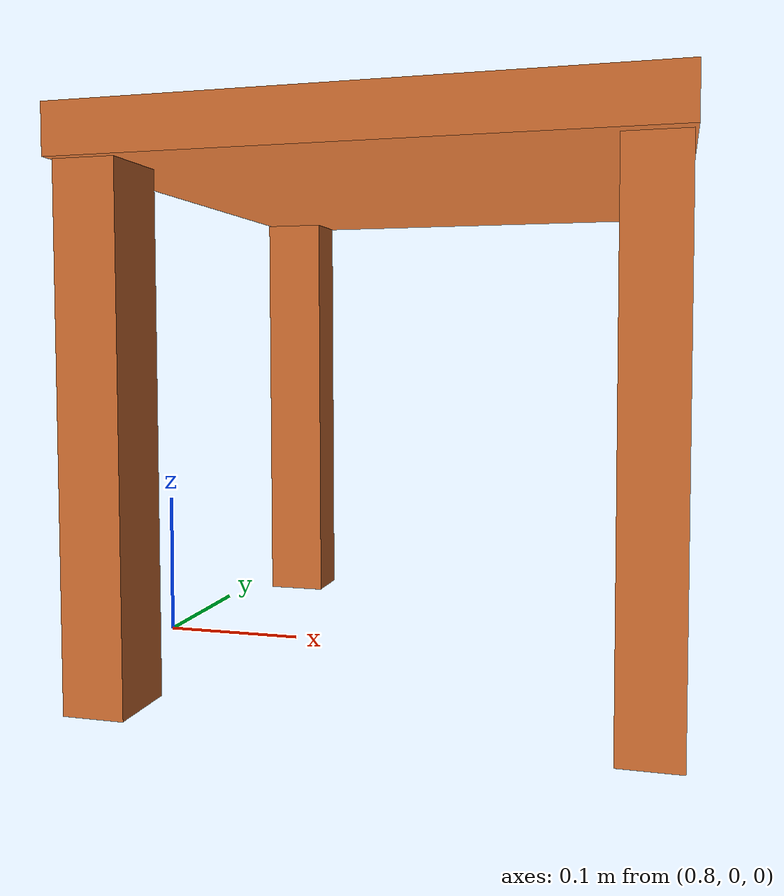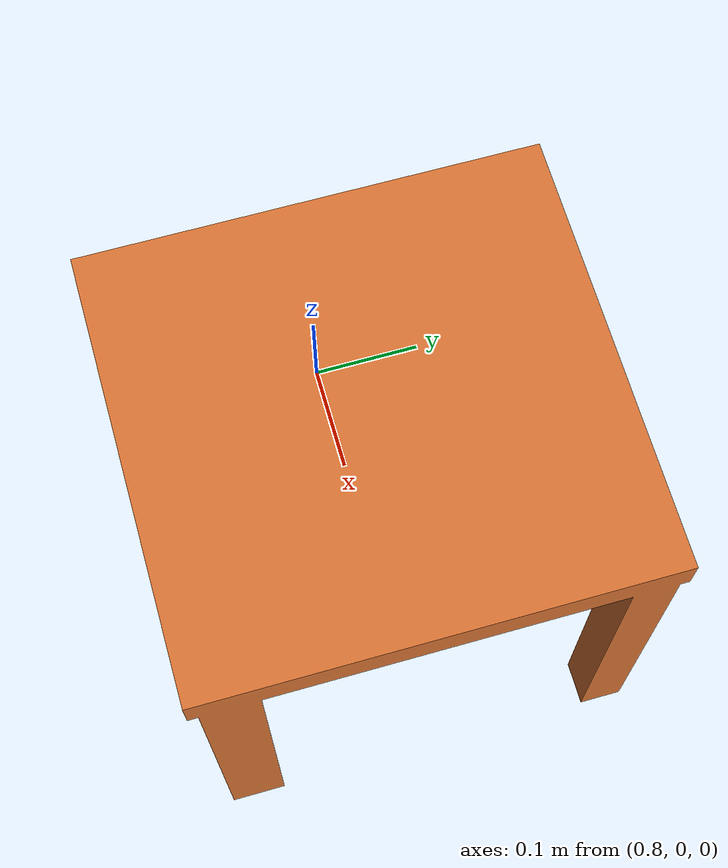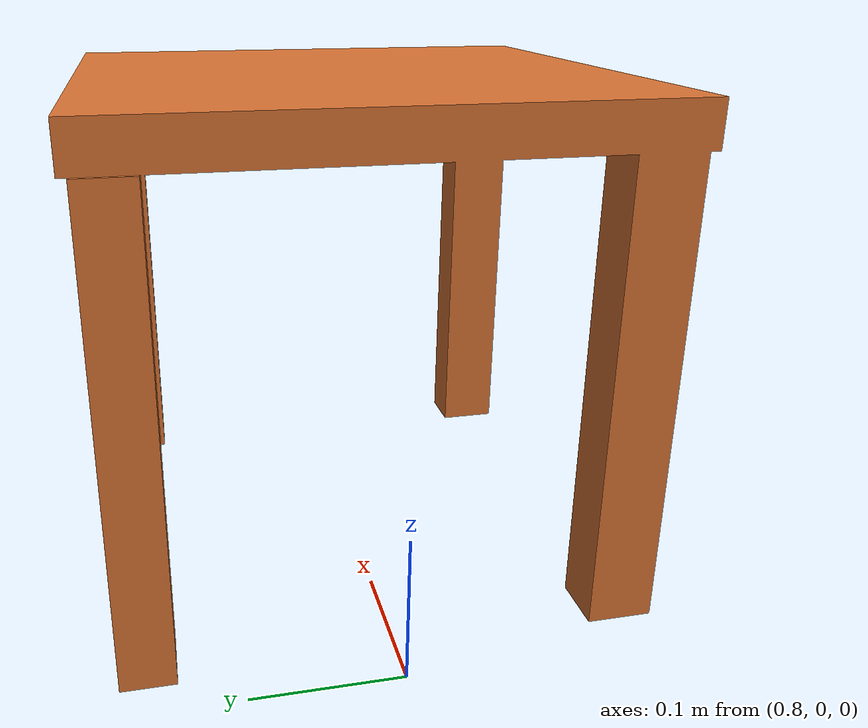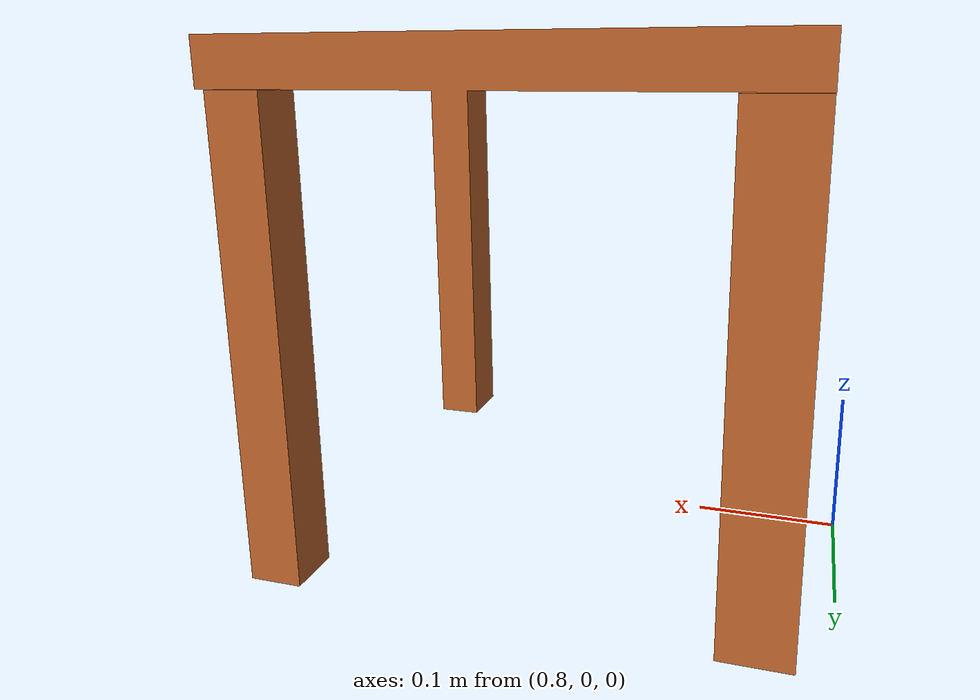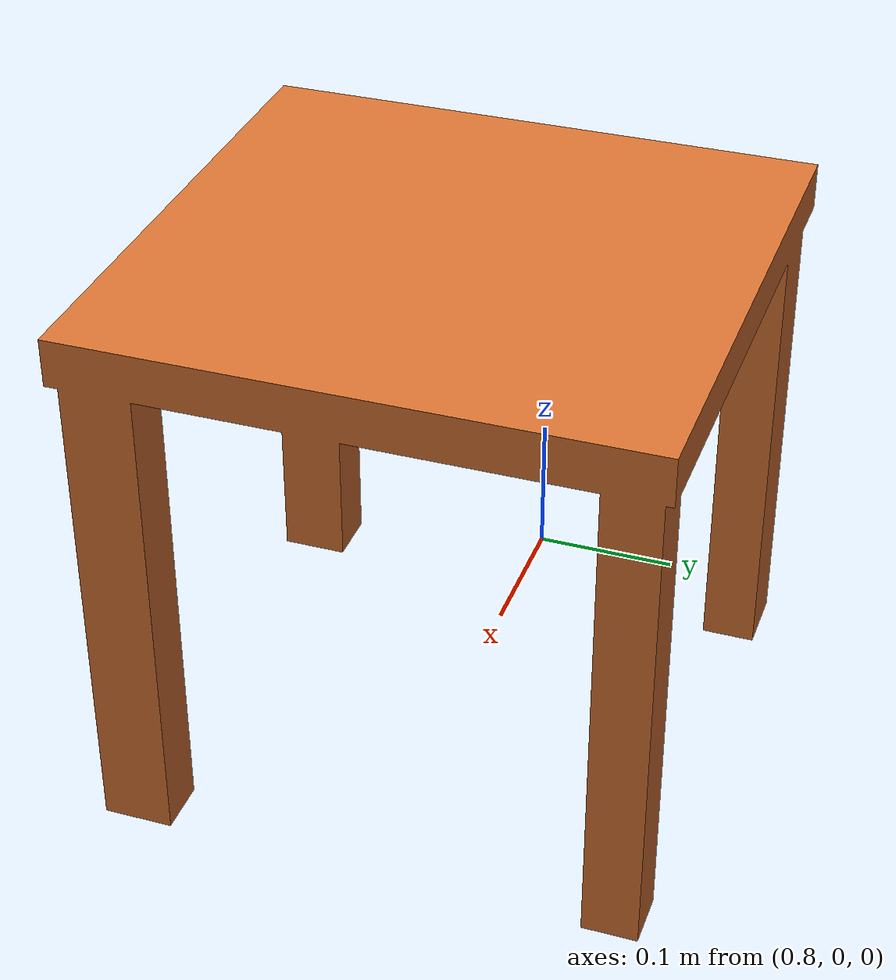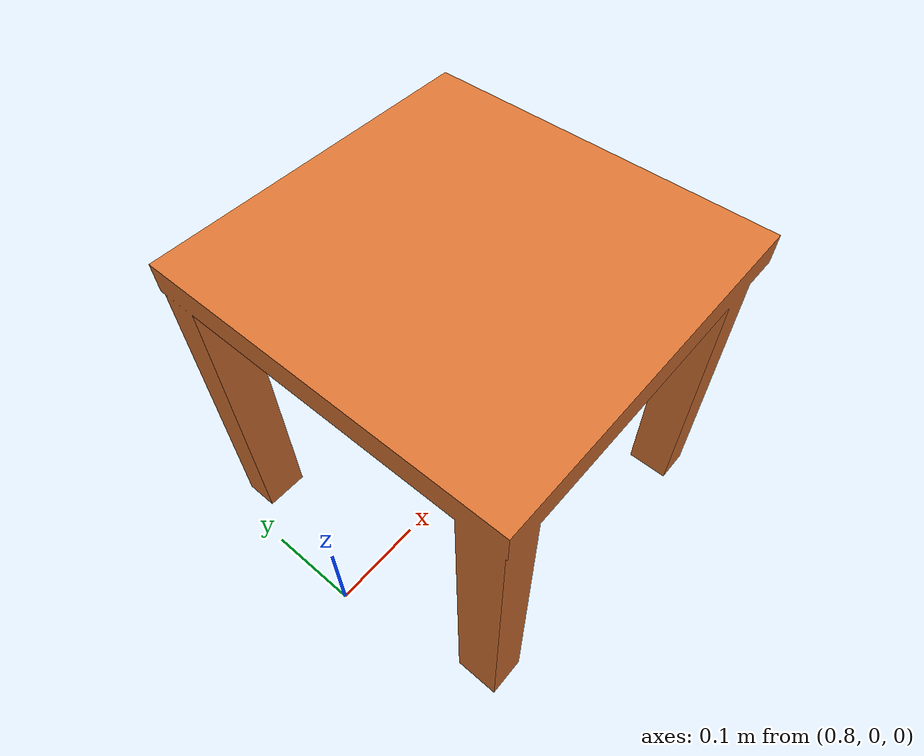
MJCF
<mujoco model="smalltable">
  <compiler meshdir="."/>

  <asset>
    <mesh name="smalltable_visual_mesh" file="visual.obj"/>
    <mesh name="smalltable_collision_mesh_00" file="collision/part_00.obj"/>
    <mesh name="smalltable_collision_mesh_01" file="collision/part_01.obj"/>
    <mesh name="smalltable_collision_mesh_02" file="collision/part_02.obj"/>
    <mesh name="smalltable_collision_mesh_03" file="collision/part_03.obj"/>
    <mesh name="smalltable_collision_mesh_04" file="collision/part_04.obj"/>
  </asset>

  <worldbody>
    <body name="hoi_object" pos="1 0 0.35113797">
      <freejoint name="hoi_object_freejoint"/>
      <geom name="hoi_object_visual" type="mesh" mesh="smalltable_visual_mesh" mass="0"
            contype="0" conaffinity="0" group="2" rgba="0.85 0.45 0.20 1"/>
      <geom name="hoi_object_collision_00" type="mesh" mesh="smalltable_collision_mesh_00"
            density="200" friction="1 0.005 0.0001" solref="0.02 1" margin="0.005" rgba="0 0 0 0"/>
      <geom name="hoi_object_collision_01" type="mesh" mesh="smalltable_collision_mesh_01"
            density="200" friction="1 0.005 0.0001" solref="0.02 1" margin="0.005" rgba="0 0 0 0"/>
      <geom name="hoi_object_collision_02" type="mesh" mesh="smalltable_collision_mesh_02"
            density="200" friction="1 0.005 0.0001" solref="0.02 1" margin="0.005" rgba="0 0 0 0"/>
      <geom name="hoi_object_collision_03" type="mesh" mesh="smalltable_collision_mesh_03"
            density="200" friction="1 0.005 0.0001" solref="0.02 1" margin="0.005" rgba="0 0 0 0"/>
      <geom name="hoi_object_collision_04" type="mesh" mesh="smalltable_collision_mesh_04"
            density="200" friction="1 0.005 0.0001" solref="0.02 1" margin="0.005" rgba="0 0 0 0"/>
    </body>
  </worldbody>
</mujoco>
